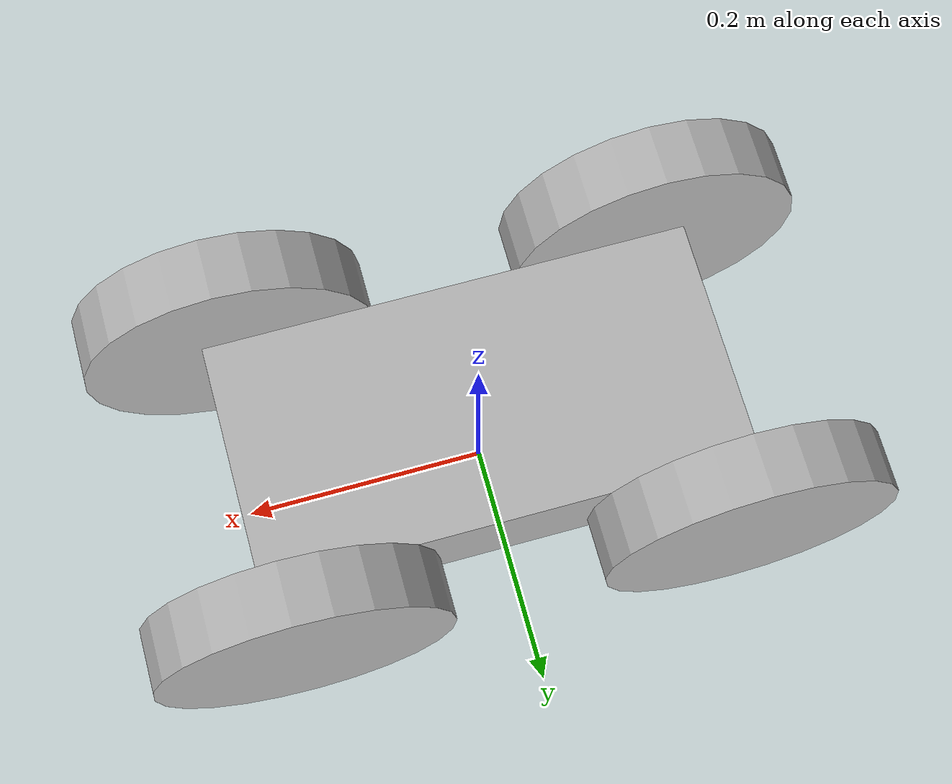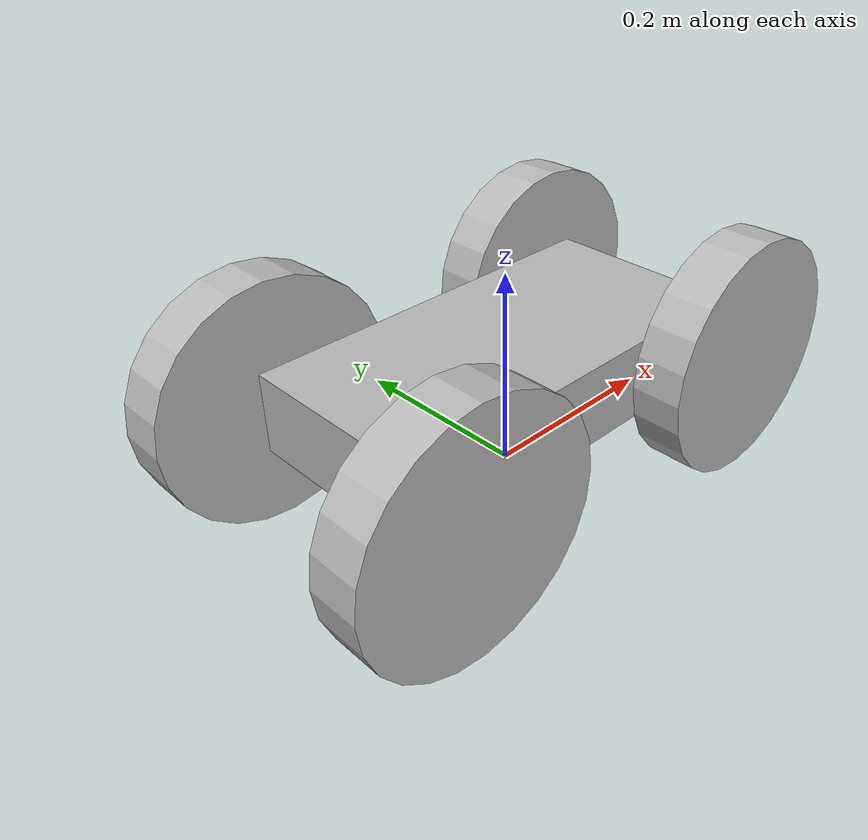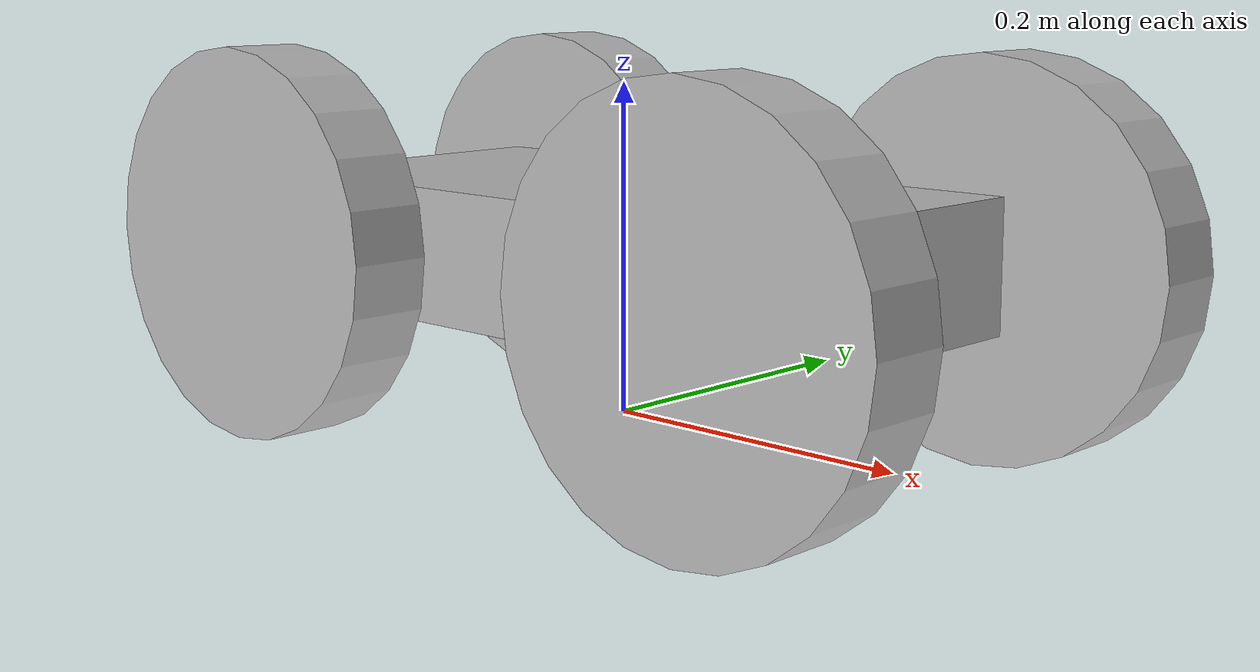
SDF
<?xml version='1.0'?>
<sdf version="1.7">
    <model name="4x4_robot">
        <link name='chassis'>
            <pose>0 0 0.1 0 0 0</pose>
            <static>true</static>
            <inertial>
                <mass>10</mass>
            </inertial>
            <collision name='chassis_collision'>
                <geometry>
                    <box>
                        <size>0.4 0.2 0.08</size>
                    </box>
                </geometry>
            </collision>
            <visual name='visual'>
                <geometry>
                    <box>
                        <size>0.4 0.2 0.08</size>
                    </box>
                </geometry>
            </visual>
        </link>

        <link name='left_front_wheel'>
            <pose>0.18 0.13 0.1 0 1.5707 1.5707</pose>
            <collision name='left_front_wheel_collision'>
                <geometry>
                    <cylinder>
                        <radius>0.12</radius>
                        <length>0.05</length>
                    </cylinder>
                </geometry>
                <surface>
                    <bounce>
                        <restitution_coefficient>0.1</restitution_coefficient>
                    </bounce>
                    <friction>
                        <ode>
                            <mu>1.0</mu>
                            <mu2>1.0</mu2>
                            <slip1>0.0</slip1>
                            <slip2>0.0</slip2>
                        </ode>
                    </friction>
                </surface>
            </collision>
            <visual name='left_front_wheel_visual'>
                <geometry>
                    <cylinder>
                        <radius>0.12</radius>
                        <length>0.05</length>
                    </cylinder>
                </geometry>
            </visual>
        </link>

        <link name='right_front_wheel'>
            <pose>0.18 -0.13 0.1 0 1.5707 1.5707</pose>
            <collision name='right_front_wheel_collision'>
                <geometry>
                    <cylinder>
                        <radius>.12</radius>
                        <length>.05</length>
                    </cylinder>
                </geometry>
                <surface>
                    <bounce>
                        <restitution_coefficient>0.1</restitution_coefficient>
                    </bounce>
                    <friction>
                        <ode>
                            <mu>1.0</mu>
                            <mu2>1.0</mu2>
                            <slip1>0.0</slip1>
                            <slip2>0.0</slip2>
                        </ode>
                    </friction>
                </surface>
            </collision>
            <visual name='right_front_wheel_visual'>
                <geometry>
                    <cylinder>
                        <radius>.12</radius>
                        <length>.05</length>
                    </cylinder>
                </geometry>
            </visual>
        </link>

        <link name='left_rear_wheel'>
            <pose>-0.18 0.13 0.1 0 1.5707 1.5707</pose>
            <collision name='left_rear_wheel_collision'>
                <geometry>
                    <cylinder>
                        <radius>0.12</radius>
                        <length>0.05</length>
                    </cylinder>
                </geometry>
                <surface>
                    <friction>
                        <ode>
                            <mu>1.0</mu>
                            <mu2>1.0</mu2>
                            <slip1>0.0</slip1>
                            <slip2>0.0</slip2>
                        </ode>
                    </friction>
                </surface>
            </collision>
            <visual name='left_rear_wheel_visual'>
                <geometry>
                    <cylinder>
                        <radius>0.12</radius>
                        <length>0.05</length>
                    </cylinder>
                </geometry>
            </visual>
        </link>

        <link name='right_rear_wheel'>
            <pose>-0.18 -0.13 0.1 0 1.5707 1.5707</pose>
            <collision name='right_rear_wheel_collision'>
                <geometry>
                    <cylinder>
                        <radius>.12</radius>
                        <length>.05</length>
                    </cylinder>
                </geometry>
                <surface>
                    <friction>
                        <ode>
                            <mu>1.0</mu>
                            <mu2>1.0</mu2>
                            <slip1>0.0</slip1>
                            <slip2>0.0</slip2>
                        </ode>
                    </friction>
                </surface>
            </collision>
            <visual name='right_rear_wheel_visual'>
                <geometry>
                    <cylinder>
                        <radius>.12</radius>
                        <length>.05</length>
                    </cylinder>
                </geometry>
            </visual>
        </link>

        <joint type='revolute' name='left_front_wheel_hinge'>
            <pose> 0 0 -0.03 0 0 0 </pose>
            <child>left_front_wheel</child>
            <parent>chassis</parent>
            <axis>
                <xyz>0 0 1</xyz>
            </axis>
            <dynamics>
                <friction>100.0</friction>
                <spring_stiffness>0.0</spring_stiffness>
            </dynamics>
        </joint>

        <joint type='revolute' name='left_rear_wheel_hinge'>
            <pose> 0 0 -0.03 0 0 0 </pose>
            <child>left_rear_wheel</child>
            <parent>chassis</parent>
            <axis>
                <xyz>0 0 1</xyz>
            </axis>
            <dynamics>
                <friction>100.0</friction>
                <spring_stiffness>0.0</spring_stiffness>
            </dynamics>
        </joint>

        <joint type='revolute' name='right_front_wheel_hinge'>
            <pose> 0 0 0.03 0 0 0 </pose>
            <child>right_front_wheel</child>
            <parent>chassis</parent>
            <axis>
                <xyz>0 0 1</xyz>
            </axis>
            <dynamics>
                <friction>100.0</friction>
                <spring_stiffness>0.0</spring_stiffness>
            </dynamics>
        </joint>

        <joint type='revolute' name='right_rear_wheel_hinge'>
            <pose> 0 0 0.03 0 0 0 </pose>
            <child>right_rear_wheel</child>
            <parent>chassis</parent>
            <axis>
                <xyz>0 0 1</xyz>
            </axis>
            <dynamics>
                <friction>100.0</friction>
                <spring_stiffness>0.0</spring_stiffness>
            </dynamics>
        </joint>

    </model>
</sdf>
